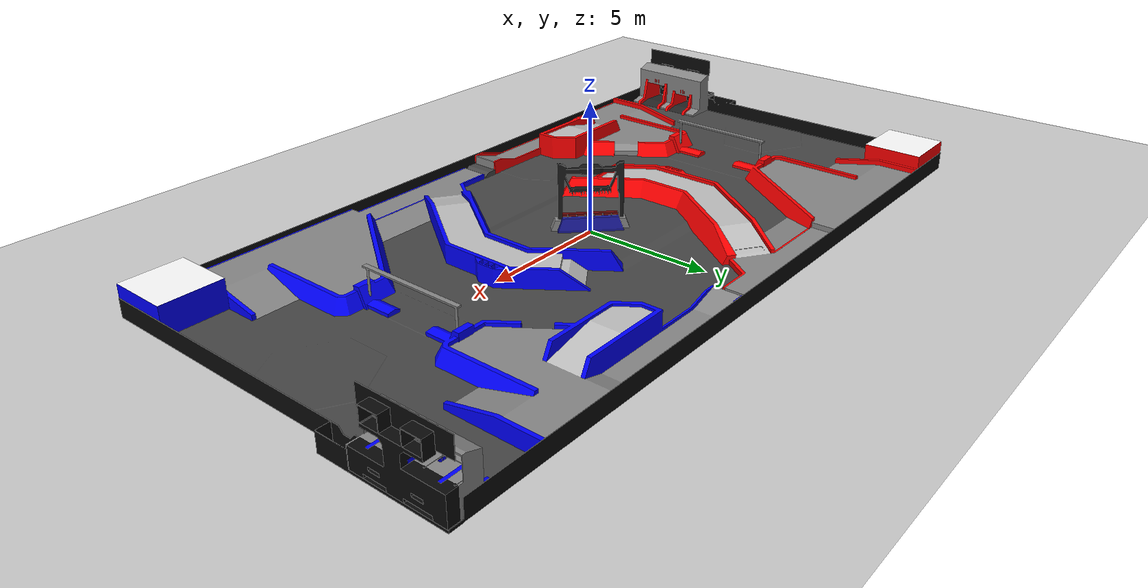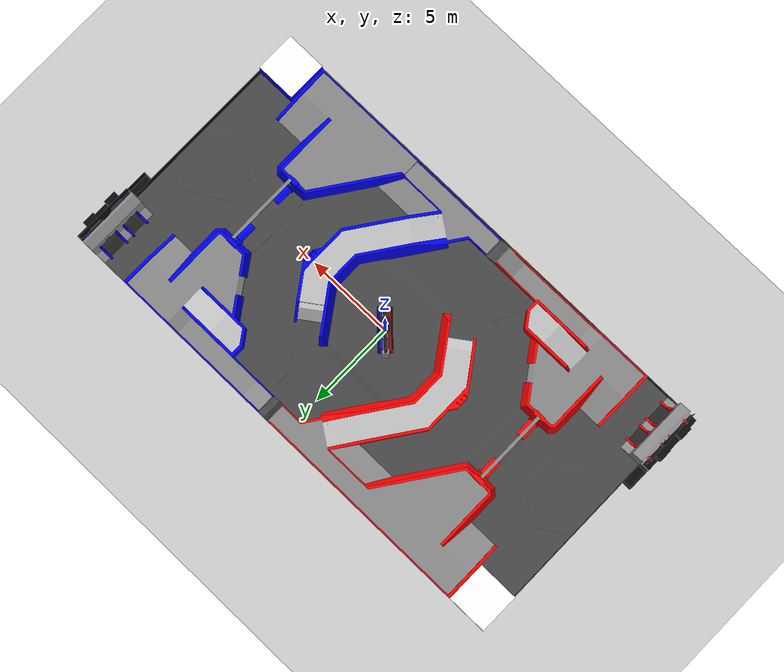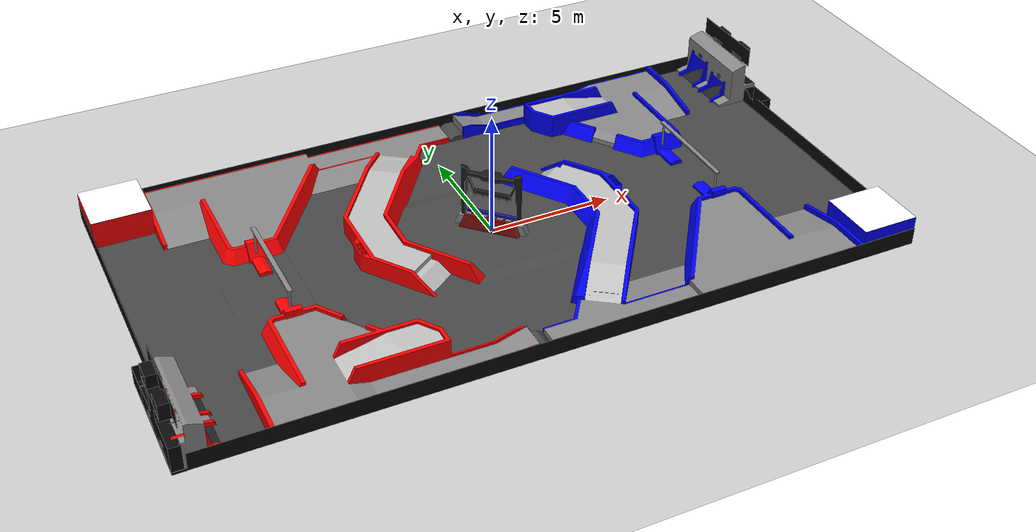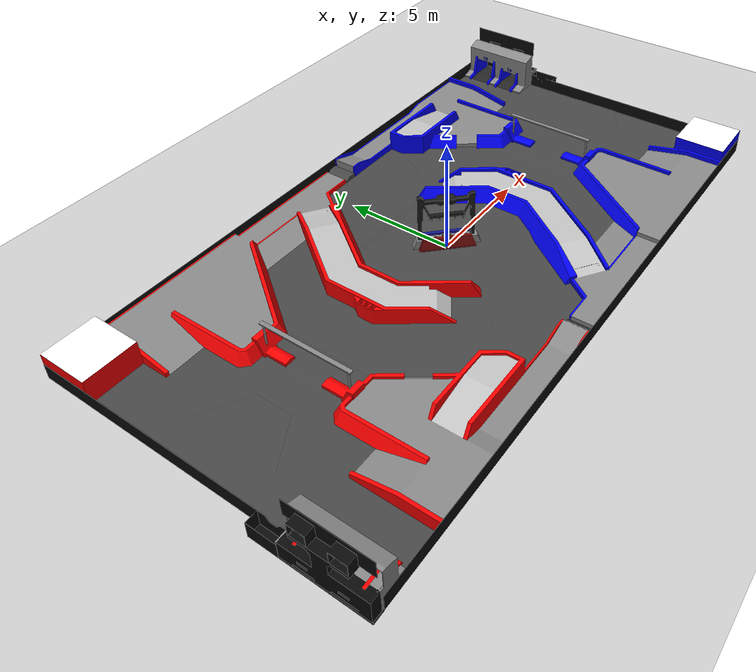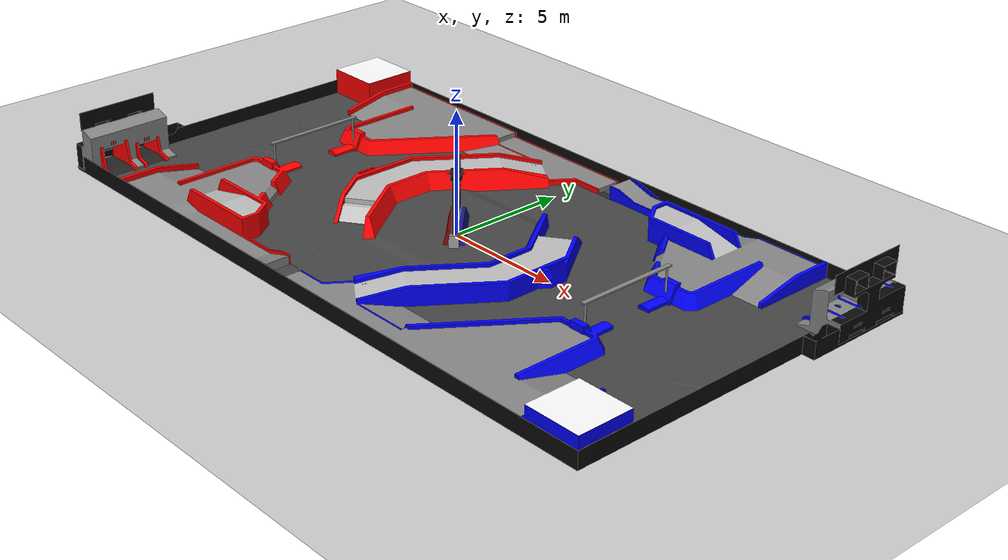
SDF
<?xml version="1.0" ?>
<sdf version="1.7">
    <world name="demo">
        <!-- Physics -->
        <plugin
            filename="libignition-gazebo-physics-system.so"
            name="ignition::gazebo::systems::Physics"></plugin>
        <!-- Forwards simulation state to the GUI -->
        <plugin
            filename="libignition-gazebo-scene-broadcaster-system.so"
            name="ignition::gazebo::systems::SceneBroadcaster"></plugin>
        <!-- Processes user commands, like translate and create -->
        <plugin
            filename="libignition-gazebo-user-commands-system.so"
            name="ignition::gazebo::systems::UserCommands"></plugin>
        <!-- Generates rendering sensor data -->
        <plugin
            filename="libignition-gazebo-sensors-system.so"
            name="ignition::gazebo::systems::Sensors">
            <!-- ogre2 not working with just the MESA_GL_VERSION_OVERRIDE=3.3 trick -->
            <render_engine>ogre2</render_engine>
        </plugin>
        <plugin filename="libignition-gazebo-imu-system.so"
        		name="ignition::gazebo::systems::Imu"></plugin>
        <!--light-->
        <light type="directional" name="sun">
            <cast_shadows>true</cast_shadows>
            <pose>0 0 10 0 0 0</pose>
            <diffuse>0.8 0.8 0.8 1</diffuse>
            <specular>0.2 0.2 0.2 1</specular>
            <attenuation>
                <range>1000</range>
                <constant>0.3</constant>
                <linear>0.01</linear>
                <quadratic>0.001</quadratic>
            </attenuation>
            <direction>-0.5 0.1 -0.9</direction>
        </light>
        <!--competition area model-->
        <include>
            <uri>model://rmuc21_battlefield</uri>
        </include>
    </world>
</sdf>

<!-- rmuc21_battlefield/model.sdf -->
<!-- |    This document was autogenerated by xmacro from model.sdf.xmacro              | -->
<!-- |    EDITING THIS FILE BY HAND IS NOT RECOMMENDED                                 | -->
<sdf version="1.7">
	<!--rmuc21_battlefield-->
	<model name="rmuc21_battlefield">
		<static>1</static>
		<!--only for visual-->
		<link name="ground_plane">
			<visual name="visual">
				<geometry>
					<plane>
						<normal>0 0 1</normal>
						<size>100 100</size>
					</plane>
				</geometry>
				<material>
					<ambient>0.8 0.8 0.8 1</ambient>
					<diffuse>0.8 0.8 0.8 1</diffuse>
					<specular>0.8 0.8 0.8 1</specular>
				</material>
			</visual>
		</link>
		<!--componets of battlefield-->
		<link name="flat_ground">
			<visual name="ground_visual">
				<geometry>
					<mesh>
						<uri>model://rmuc21_ground/meshes/flat_ground.dae</uri>
					</mesh>
				</geometry>
			</visual>
			<collision name="ground_collision">
				<geometry>
					<mesh>
						<uri>model://rmuc21_ground/meshes/flat_ground.dae</uri>
					</mesh>
				</geometry>
			</collision>
			<visual name="wall_visual">
				<geometry>
					<mesh>
						<uri>model://rmuc21_ground/meshes/ground_wall.dae</uri>
					</mesh>
				</geometry>
			</visual>
			<collision name="wall_collision">
				<geometry>
					<mesh>
						<uri>model://rmuc21_ground/meshes/ground_wall.dae</uri>
					</mesh>
				</geometry>
			</collision>
		</link>
		<link name="red_elevated_ground">
			<pose>0 0 0 0 0 0</pose>
			<visual name="left_elevated_ground_visual">
				<geometry>
					<mesh>
						<uri>model://rmuc21_ground/meshes/left_elevated_ground.dae</uri>
					</mesh>
				</geometry>
			</visual>
			<collision name="left_elevated_ground_collision">
				<geometry>
					<mesh>
						<uri>model://rmuc21_ground/meshes/left_elevated_ground.dae</uri>
					</mesh>
				</geometry>
			</collision>
			<visual name="right_elevated_ground_visual">
				<geometry>
					<mesh>
						<uri>model://rmuc21_ground/meshes/right_elevated_ground.dae</uri>
					</mesh>
				</geometry>
			</visual>
			<collision name="right_elevated_ground_collision">
				<geometry>
					<mesh>
						<uri>model://rmuc21_ground/meshes/right_elevated_ground.dae</uri>
					</mesh>
				</geometry>
			</collision>
			<visual name="left_elevated_ground_wall_visual">
				<geometry>
					<mesh>
						<uri>model://rmuc21_ground/meshes/left_elevated_ground_wall.dae</uri>
					</mesh>
				</geometry>
				<material>
					<ambient>1 0 0 1</ambient>
					<diffuse>1 0 0 1</diffuse>
					<specular>1 0 0 1</specular>
				</material>
			</visual>
			<collision name="left_elevated_ground_wall_collision">
				<geometry>
					<mesh>
						<uri>model://rmuc21_ground/meshes/left_elevated_ground_wall.dae</uri>
					</mesh>
				</geometry>
			</collision>
			<visual name="right_elevated_ground_wall_visual">
				<geometry>
					<mesh>
						<uri>model://rmuc21_ground/meshes/right_elevated_ground_wall.dae</uri>
					</mesh>
				</geometry>
				<material>
					<ambient>1 0 0 1</ambient>
					<diffuse>1 0 0 1</diffuse>
					<specular>1 0 0 1</specular>
				</material>
			</visual>
			<collision name="right_elevated_ground_wall_collision">
				<geometry>
					<mesh>
						<uri>model://rmuc21_ground/meshes/right_elevated_ground_wall.dae</uri>
					</mesh>
				</geometry>
			</collision>
		</link>
		<link name="blue_elevated_ground">
			<pose>0 0 0 0 0 3.14159</pose>
			<visual name="left_elevated_ground_visual">
				<geometry>
					<mesh>
						<uri>model://rmuc21_ground/meshes/left_elevated_ground.dae</uri>
					</mesh>
				</geometry>
			</visual>
			<collision name="left_elevated_ground_collision">
				<geometry>
					<mesh>
						<uri>model://rmuc21_ground/meshes/left_elevated_ground.dae</uri>
					</mesh>
				</geometry>
			</collision>
			<visual name="right_elevated_ground_visual">
				<geometry>
					<mesh>
						<uri>model://rmuc21_ground/meshes/right_elevated_ground.dae</uri>
					</mesh>
				</geometry>
			</visual>
			<collision name="right_elevated_ground_collision">
				<geometry>
					<mesh>
						<uri>model://rmuc21_ground/meshes/right_elevated_ground.dae</uri>
					</mesh>
				</geometry>
			</collision>
			<visual name="left_elevated_ground_wall_visual">
				<geometry>
					<mesh>
						<uri>model://rmuc21_ground/meshes/left_elevated_ground_wall.dae</uri>
					</mesh>
				</geometry>
				<material>
					<ambient>0 0 1 1</ambient>
					<diffuse>0 0 1 1</diffuse>
					<specular>0 0 1 1</specular>
				</material>
			</visual>
			<collision name="left_elevated_ground_wall_collision">
				<geometry>
					<mesh>
						<uri>model://rmuc21_ground/meshes/left_elevated_ground_wall.dae</uri>
					</mesh>
				</geometry>
			</collision>
			<visual name="right_elevated_ground_wall_visual">
				<geometry>
					<mesh>
						<uri>model://rmuc21_ground/meshes/right_elevated_ground_wall.dae</uri>
					</mesh>
				</geometry>
				<material>
					<ambient>0 0 1 1</ambient>
					<diffuse>0 0 1 1</diffuse>
					<specular>0 0 1 1</specular>
				</material>
			</visual>
			<collision name="right_elevated_ground_wall_collision">
				<geometry>
					<mesh>
						<uri>model://rmuc21_ground/meshes/right_elevated_ground_wall.dae</uri>
					</mesh>
				</geometry>
			</collision>
		</link>
		<link name="resource_island">
			<pose>0 0 0 0 0 0.7854</pose>
			<visual name="base_visual">
				<geometry>
					<mesh>
						<uri>model://rmuc21_resource_island/meshes/resource_island_base.dae</uri>
					</mesh>
				</geometry>
			</visual>
			<collision name="base_collision">
				<geometry>
					<mesh>
						<uri>model://rmuc21_resource_island/meshes/resource_island_base.dae</uri>
					</mesh>
				</geometry>
			</collision>
			<visual name="holder_visual">
				<geometry>
					<mesh>
						<uri>model://rmuc21_resource_island/meshes/resource_island_holder.dae</uri>
					</mesh>
				</geometry>
			</visual>
			<collision name="holder_collision">
				<geometry>
					<mesh>
						<uri>model://rmuc21_resource_island/meshes/resource_island_holder.dae</uri>
					</mesh>
				</geometry>
			</collision>
		</link>
		<link name="red__supplier">
			<pose>-13.642 -5.750 0.1 0 0 0</pose>
			<visual name="supplier_visual">
				<geometry>
					<mesh>
						<uri>model://rmuc21_projectile_supplier/meshes/supplier.dae</uri>
					</mesh>
				</geometry>
			</visual>
			<collision name="supplier_collision">
				<geometry>
					<mesh>
						<uri>model://rmuc21_projectile_supplier/meshes/supplier.dae</uri>
					</mesh>
				</geometry>
			</collision>
			<visual name="extra_visual">
				<geometry>
					<mesh>
						<uri>model://rmuc21_projectile_supplier/meshes/supplier_extra.dae</uri>
					</mesh>
				</geometry>
				<material>
					<ambient>1 0 0 1</ambient>
					<diffuse>1 0 0 1</diffuse>
					<specular>1 0 0 1</specular>
				</material>
			</visual>
			<collision name="extra_collision">
				<geometry>
					<mesh>
						<uri>model://rmuc21_projectile_supplier/meshes/supplier_extra.dae</uri>
					</mesh>
				</geometry>
			</collision>
		</link>
		<link name="blue_supplier">
			<pose>13.642 5.750 0.1 0 0 3.14159</pose>
			<visual name="supplier_visual">
				<geometry>
					<mesh>
						<uri>model://rmuc21_projectile_supplier/meshes/supplier.dae</uri>
					</mesh>
				</geometry>
			</visual>
			<collision name="supplier_collision">
				<geometry>
					<mesh>
						<uri>model://rmuc21_projectile_supplier/meshes/supplier.dae</uri>
					</mesh>
				</geometry>
			</collision>
			<visual name="extra_visual">
				<geometry>
					<mesh>
						<uri>model://rmuc21_projectile_supplier/meshes/supplier_extra.dae</uri>
					</mesh>
				</geometry>
				<material>
					<ambient>0 0 1 1</ambient>
					<diffuse>0 0 1 1</diffuse>
					<specular>0 0 1 1</specular>
				</material>
			</visual>
			<collision name="extra_collision">
				<geometry>
					<mesh>
						<uri>model://rmuc21_projectile_supplier/meshes/supplier_extra.dae</uri>
					</mesh>
				</geometry>
			</collision>
		</link>
		<link name="red_landing_pad">
			<pose>-12.85 6.35 0.1 0 0 0</pose>
			<visual name="visual">
				<pose>0 0 0.55 0 0 0</pose>
				<geometry>
					<box>
						<size>2.3 2.3 1.1</size>
					</box>
				</geometry>
				<material>
					<ambient>1 0 0 1</ambient>
					<diffuse>1 0 0 1</diffuse>
					<specular>1 0 0 1</specular>
				</material>
			</visual>
			<visual name="sticker_visual">
				<pose>0 0 1.101 0 0 0</pose>
				<geometry>
					<plane>
						<normal>0 0 1</normal>
						<size>2.3 2.3</size>
					</plane>
				</geometry>
				<material>
					<diffuse>1.0 1.0 1.0</diffuse>
					<pbr>
						<metal>
							<albedo_map>model://rmuc21_landing_pad/materials/textures/landing_pad.png</albedo_map>
						</metal>
					</pbr>
				</material>
			</visual>
			<collision name="collision">
				<pose>0 0 0.55 0 0 0</pose>
				<geometry>
					<box>
						<size>2.3 2.3 1.1</size>
					</box>
				</geometry>
			</collision>
		</link>
		<link name="blue_landing_pad">
			<pose>12.85 -6.35 0.1 0 0 3.14159</pose>
			<visual name="visual">
				<pose>0 0 0.55 0 0 0</pose>
				<geometry>
					<box>
						<size>2.3 2.3 1.1</size>
					</box>
				</geometry>
				<material>
					<ambient>0 0 1 1</ambient>
					<diffuse>0 0 1 1</diffuse>
					<specular>0 0 1 1</specular>
				</material>
			</visual>
			<visual name="sticker_visual">
				<pose>0 0 1.101 0 0 0</pose>
				<geometry>
					<plane>
						<normal>0 0 1</normal>
						<size>2.3 2.3</size>
					</plane>
				</geometry>
				<material>
					<diffuse>1.0 1.0 1.0</diffuse>
					<pbr>
						<metal>
							<albedo_map>model://rmuc21_landing_pad/materials/textures/landing_pad.png</albedo_map>
						</metal>
					</pbr>
				</material>
			</visual>
			<collision name="collision">
				<pose>0 0 0.55 0 0 0</pose>
				<geometry>
					<box>
						<size>2.3 2.3 1.1</size>
					</box>
				</geometry>
			</collision>
		</link>
		<link name="red_sentry_rail">
			<pose>-8.703 0 1.445 0 0 0</pose>
			<visual name="sentry_rail_visual">
				<geometry>
					<mesh>
						<uri>model://rmuc21_sentry_rail/meshes/sentry_rail.dae</uri>
					</mesh>
				</geometry>
			</visual>
			<collision name="sentry_rail_collision">
				<geometry>
					<mesh>
						<uri>model://rmuc21_sentry_rail/meshes/sentry_rail.dae</uri>
					</mesh>
				</geometry>
			</collision>
		</link>
		<link name="blue_sentry_rail">
			<pose>8.703 0 1.445 0 0 0</pose>
			<visual name="sentry_rail_visual">
				<geometry>
					<mesh>
						<uri>model://rmuc21_sentry_rail/meshes/sentry_rail.dae</uri>
					</mesh>
				</geometry>
			</visual>
			<collision name="sentry_rail_collision">
				<geometry>
					<mesh>
						<uri>model://rmuc21_sentry_rail/meshes/sentry_rail.dae</uri>
					</mesh>
				</geometry>
			</collision>
		</link>
	</model>
</sdf>
